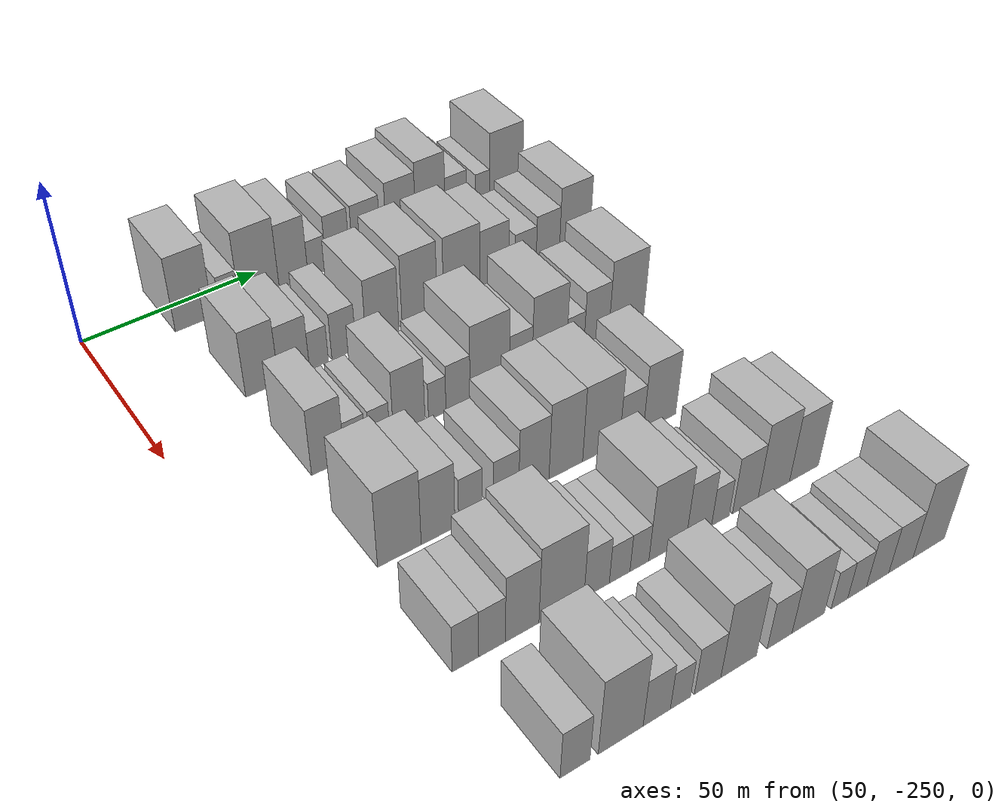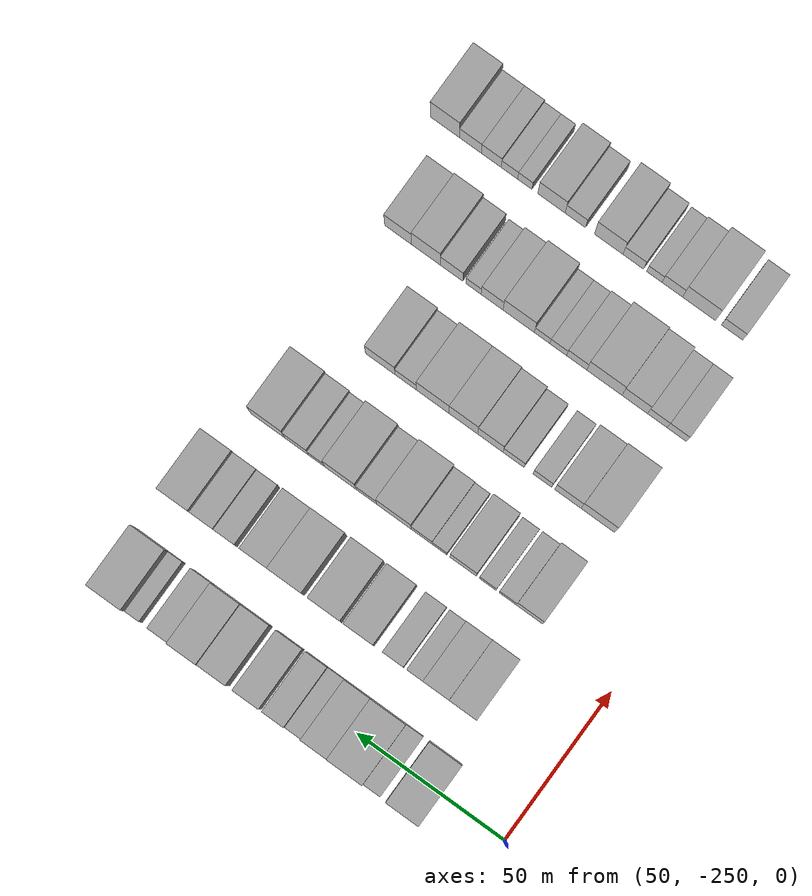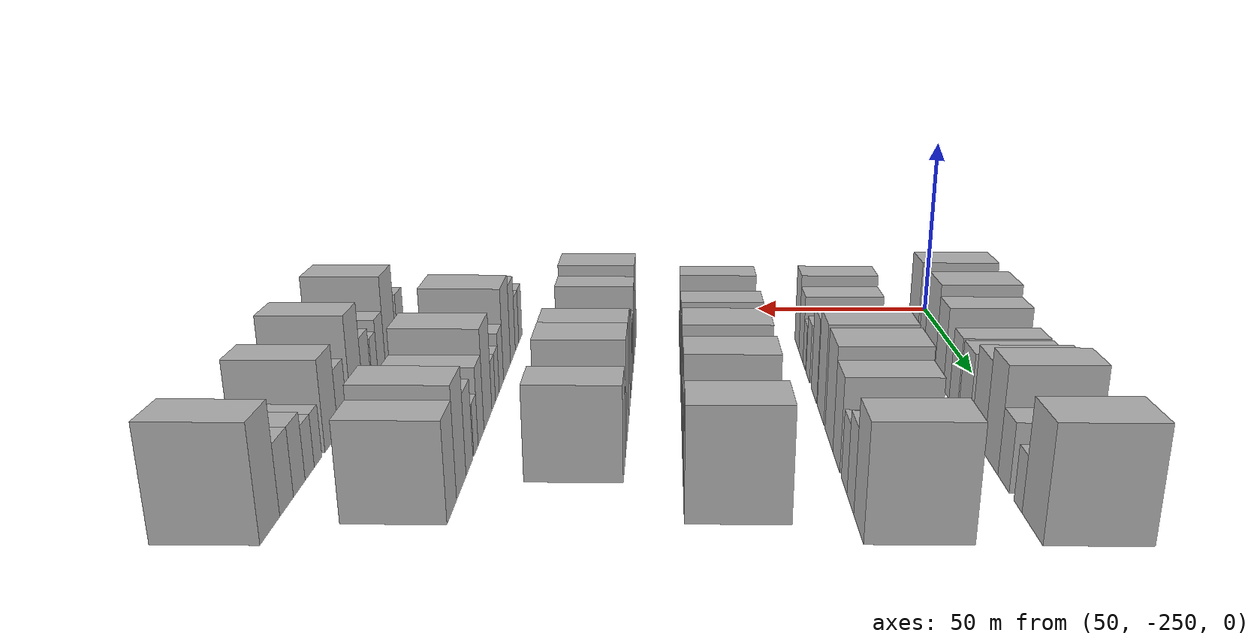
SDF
<sdf version="1.6">
 <world name="default">
  <model name="building_35">
   <static>1</static>
   <pose>50.0000 -222.9029 0 0.000000 0.000000 0.000000</pose>
   <link name="link">
    <pose>0 0 12.00 0 0 0</pose>
    <collision name="collision"><geometry><box><size>20.0000 10.8468 24.0000</size></box></geometry></collision>
    <visual name="visual">
     <cast_shadows>0</cast_shadows>
     <geometry><box><size>20.0000 10.8468 24.0000</size></box></geometry>
     <material>
      <script>
       <uri>model://HANNAS_wall/materials/scripts</uri>
       <uri>model://HANNAS_wall/materials/textures</uri>
       <name>vrc/HANNAS_wall</name>
      </script>
     </material>
    </visual>
   </link>
  </model>
  <model name="building_36">
   <static>1</static>
   <pose>50.0000 -212.6244 0 0.000000 0.000000 0.000000</pose>
   <link name="link">
    <pose>0 0 6.00 0 0 0</pose>
    <collision name="collision"><geometry><box><size>20.0000 5.7102 12.0000</size></box></geometry></collision>
    <visual name="visual">
     <cast_shadows>0</cast_shadows>
     <geometry><box><size>20.0000 5.7102 12.0000</size></box></geometry>
     <material>
      <script>
       <uri>model://HANNAS_wall/materials/scripts</uri>
       <uri>model://HANNAS_wall/materials/textures</uri>
       <name>vrc/HANNAS_wall</name>
      </script>
     </material>
    </visual>
   </link>
  </model>
  <model name="building_37">
   <static>1</static>
   <pose>50.0000 -203.8421 0 0.000000 0.000000 0.000000</pose>
   <link name="link">
    <pose>0 0 12.00 0 0 0</pose>
    <collision name="collision"><geometry><box><size>20.0000 11.8542 24.0000</size></box></geometry></collision>
    <visual name="visual">
     <cast_shadows>0</cast_shadows>
     <geometry><box><size>20.0000 11.8542 24.0000</size></box></geometry>
     <material>
      <script>
       <uri>model://HANNAS_wall/materials/scripts</uri>
       <uri>model://HANNAS_wall/materials/textures</uri>
       <name>vrc/HANNAS_wall</name>
      </script>
     </material>
    </visual>
   </link>
  </model>
  <model name="building_38">
   <static>1</static>
   <pose>50.0000 -193.5161 0 0.000000 0.000000 0.000000</pose>
   <link name="link">
    <pose>0 0 10.50 0 0 0</pose>
    <collision name="collision"><geometry><box><size>20.0000 8.7978 21.0000</size></box></geometry></collision>
    <visual name="visual">
     <cast_shadows>0</cast_shadows>
     <geometry><box><size>20.0000 8.7978 21.0000</size></box></geometry>
     <material>
      <script>
       <uri>model://HANNAS_wall/materials/scripts</uri>
       <uri>model://HANNAS_wall/materials/textures</uri>
       <name>vrc/HANNAS_wall</name>
      </script>
     </material>
    </visual>
   </link>
  </model>
  <model name="building_39">
   <static>1</static>
   <pose>50.0000 -186.3156 0 0.000000 0.000000 0.000000</pose>
   <link name="link">
    <pose>0 0 6.00 0 0 0</pose>
    <collision name="collision"><geometry><box><size>20.0000 5.6032 12.0000</size></box></geometry></collision>
    <visual name="visual">
     <cast_shadows>0</cast_shadows>
     <geometry><box><size>20.0000 5.6032 12.0000</size></box></geometry>
     <material>
      <script>
       <uri>model://HANNAS_wall/materials/scripts</uri>
       <uri>model://HANNAS_wall/materials/textures</uri>
       <name>vrc/HANNAS_wall</name>
      </script>
     </material>
    </visual>
   </link>
  </model>
  <model name="building_40">
   <static>1</static>
   <pose>50.0000 -179.8365 0 0.000000 0.000000 0.000000</pose>
   <link name="link">
    <pose>0 0 9.00 0 0 0</pose>
    <collision name="collision"><geometry><box><size>20.0000 7.3552 18.0000</size></box></geometry></collision>
    <visual name="visual">
     <cast_shadows>0</cast_shadows>
     <geometry><box><size>20.0000 7.3552 18.0000</size></box></geometry>
     <material>
      <script>
       <uri>model://HANNAS_wall/materials/scripts</uri>
       <uri>model://HANNAS_wall/materials/textures</uri>
       <name>vrc/HANNAS_wall</name>
      </script>
     </material>
    </visual>
   </link>
  </model>
  <model name="building_41">
   <static>1</static>
   <pose>50.0000 -170.7473 0 0.000000 0.000000 0.000000</pose>
   <link name="link">
    <pose>0 0 9.00 0 0 0</pose>
    <collision name="collision"><geometry><box><size>20.0000 8.8231 18.0000</size></box></geometry></collision>
    <visual name="visual">
     <cast_shadows>0</cast_shadows>
     <geometry><box><size>20.0000 8.8231 18.0000</size></box></geometry>
     <material>
      <script>
       <uri>model://HANNAS_wall/materials/scripts</uri>
       <uri>model://HANNAS_wall/materials/textures</uri>
       <name>vrc/HANNAS_wall</name>
      </script>
     </material>
    </visual>
   </link>
  </model>
  <model name="building_42">
   <static>1</static>
   <pose>50.0000 -159.5592 0 0.000000 0.000000 0.000000</pose>
   <link name="link">
    <pose>0 0 10.50 0 0 0</pose>
    <collision name="collision"><geometry><box><size>20.0000 9.5531 21.0000</size></box></geometry></collision>
    <visual name="visual">
     <cast_shadows>0</cast_shadows>
     <geometry><box><size>20.0000 9.5531 21.0000</size></box></geometry>
     <material>
      <script>
       <uri>model://HANNAS_wall/materials/scripts</uri>
       <uri>model://HANNAS_wall/materials/textures</uri>
       <name>vrc/HANNAS_wall</name>
      </script>
     </material>
    </visual>
   </link>
  </model>
  <model name="building_43">
   <static>1</static>
   <pose>50.0000 -149.8854 0 0.000000 0.000000 0.000000</pose>
   <link name="link">
    <pose>0 0 12.00 0 0 0</pose>
    <collision name="collision"><geometry><box><size>20.0000 9.7946 24.0000</size></box></geometry></collision>
    <visual name="visual">
     <cast_shadows>0</cast_shadows>
     <geometry><box><size>20.0000 9.7946 24.0000</size></box></geometry>
     <material>
      <script>
       <uri>model://HANNAS_wall/materials/scripts</uri>
       <uri>model://HANNAS_wall/materials/textures</uri>
       <name>vrc/HANNAS_wall</name>
      </script>
     </material>
    </visual>
   </link>
  </model>
  <model name="building_44">
   <static>1</static>
   <pose>50.0000 -141.3298 0 0.000000 0.000000 0.000000</pose>
   <link name="link">
    <pose>0 0 7.50 0 0 0</pose>
    <collision name="collision"><geometry><box><size>20.0000 7.3166 15.0000</size></box></geometry></collision>
    <visual name="visual">
     <cast_shadows>0</cast_shadows>
     <geometry><box><size>20.0000 7.3166 15.0000</size></box></geometry>
     <material>
      <script>
       <uri>model://HANNAS_wall/materials/scripts</uri>
       <uri>model://HANNAS_wall/materials/textures</uri>
       <name>vrc/HANNAS_wall</name>
      </script>
     </material>
    </visual>
   </link>
  </model>
  <model name="building_45">
   <static>1</static>
   <pose>50.0000 -132.2656 0 0.000000 0.000000 0.000000</pose>
   <link name="link">
    <pose>0 0 6.00 0 0 0</pose>
    <collision name="collision"><geometry><box><size>20.0000 4.8118 12.0000</size></box></geometry></collision>
    <visual name="visual">
     <cast_shadows>0</cast_shadows>
     <geometry><box><size>20.0000 4.8118 12.0000</size></box></geometry>
     <material>
      <script>
       <uri>model://HANNAS_wall/materials/scripts</uri>
       <uri>model://HANNAS_wall/materials/textures</uri>
       <name>vrc/HANNAS_wall</name>
      </script>
     </material>
    </visual>
   </link>
  </model>
  <model name="building_46">
   <static>1</static>
   <pose>50.0000 -124.0828 0 0.000000 0.000000 0.000000</pose>
   <link name="link">
    <pose>0 0 12.00 0 0 0</pose>
    <collision name="collision"><geometry><box><size>20.0000 11.5539 24.0000</size></box></geometry></collision>
    <visual name="visual">
     <cast_shadows>0</cast_shadows>
     <geometry><box><size>20.0000 11.5539 24.0000</size></box></geometry>
     <material>
      <script>
       <uri>model://HANNAS_wall/materials/scripts</uri>
       <uri>model://HANNAS_wall/materials/textures</uri>
       <name>vrc/HANNAS_wall</name>
      </script>
     </material>
    </visual>
   </link>
  </model>
  <model name="building_154">
   <static>1</static>
   <pose>82.0000 -219.8962 0 0.000000 0.000000 0.000000</pose>
   <link name="link">
    <pose>0 0 10.50 0 0 0</pose>
    <collision name="collision"><geometry><box><size>20.0000 9.1599 21.0000</size></box></geometry></collision>
    <visual name="visual">
     <cast_shadows>0</cast_shadows>
     <geometry><box><size>20.0000 9.1599 21.0000</size></box></geometry>
     <material>
      <script>
       <uri>model://HANNAS_wall/materials/scripts</uri>
       <uri>model://HANNAS_wall/materials/textures</uri>
       <name>vrc/HANNAS_wall</name>
      </script>
     </material>
    </visual>
   </link>
  </model>
  <model name="building_155">
   <static>1</static>
   <pose>82.0000 -210.9433 0 0.000000 0.000000 0.000000</pose>
   <link name="link">
    <pose>0 0 9.00 0 0 0</pose>
    <collision name="collision"><geometry><box><size>20.0000 8.7459 18.0000</size></box></geometry></collision>
    <visual name="visual">
     <cast_shadows>0</cast_shadows>
     <geometry><box><size>20.0000 8.7459 18.0000</size></box></geometry>
     <material>
      <script>
       <uri>model://HANNAS_wall/materials/scripts</uri>
       <uri>model://HANNAS_wall/materials/textures</uri>
       <name>vrc/HANNAS_wall</name>
      </script>
     </material>
    </visual>
   </link>
  </model>
  <model name="building_156">
   <static>1</static>
   <pose>82.0000 -203.8477 0 0.000000 0.000000 0.000000</pose>
   <link name="link">
    <pose>0 0 6.00 0 0 0</pose>
    <collision name="collision"><geometry><box><size>20.0000 5.4451 12.0000</size></box></geometry></collision>
    <visual name="visual">
     <cast_shadows>0</cast_shadows>
     <geometry><box><size>20.0000 5.4451 12.0000</size></box></geometry>
     <material>
      <script>
       <uri>model://HANNAS_wall/materials/scripts</uri>
       <uri>model://HANNAS_wall/materials/textures</uri>
       <name>vrc/HANNAS_wall</name>
      </script>
     </material>
    </visual>
   </link>
  </model>
  <model name="building_157">
   <static>1</static>
   <pose>82.0000 -196.5955 0 0.000000 0.000000 0.000000</pose>
   <link name="link">
    <pose>0 0 7.50 0 0 0</pose>
    <collision name="collision"><geometry><box><size>20.0000 7.0593 15.0000</size></box></geometry></collision>
    <visual name="visual">
     <cast_shadows>0</cast_shadows>
     <geometry><box><size>20.0000 7.0593 15.0000</size></box></geometry>
     <material>
      <script>
       <uri>model://HANNAS_wall/materials/scripts</uri>
       <uri>model://HANNAS_wall/materials/textures</uri>
       <name>vrc/HANNAS_wall</name>
      </script>
     </material>
    </visual>
   </link>
  </model>
  <model name="building_158">
   <static>1</static>
   <pose>82.0000 -185.1236 0 0.000000 0.000000 0.000000</pose>
   <link name="link">
    <pose>0 0 10.50 0 0 0</pose>
    <collision name="collision"><geometry><box><size>20.0000 9.8846 21.0000</size></box></geometry></collision>
    <visual name="visual">
     <cast_shadows>0</cast_shadows>
     <geometry><box><size>20.0000 9.8846 21.0000</size></box></geometry>
     <material>
      <script>
       <uri>model://HANNAS_wall/materials/scripts</uri>
       <uri>model://HANNAS_wall/materials/textures</uri>
       <name>vrc/HANNAS_wall</name>
      </script>
     </material>
    </visual>
   </link>
  </model>
  <model name="building_159">
   <static>1</static>
   <pose>82.0000 -173.7781 0 0.000000 0.000000 0.000000</pose>
   <link name="link">
    <pose>0 0 12.00 0 0 0</pose>
    <collision name="collision"><geometry><box><size>20.0000 10.8063 24.0000</size></box></geometry></collision>
    <visual name="visual">
     <cast_shadows>0</cast_shadows>
     <geometry><box><size>20.0000 10.8063 24.0000</size></box></geometry>
     <material>
      <script>
       <uri>model://HANNAS_wall/materials/scripts</uri>
       <uri>model://HANNAS_wall/materials/textures</uri>
       <name>vrc/HANNAS_wall</name>
      </script>
     </material>
    </visual>
   </link>
  </model>
  <model name="building_160">
   <static>1</static>
   <pose>82.0000 -160.6471 0 0.000000 0.000000 0.000000</pose>
   <link name="link">
    <pose>0 0 12.00 0 0 0</pose>
    <collision name="collision"><geometry><box><size>20.0000 11.4556 24.0000</size></box></geometry></collision>
    <visual name="visual">
     <cast_shadows>0</cast_shadows>
     <geometry><box><size>20.0000 11.4556 24.0000</size></box></geometry>
     <material>
      <script>
       <uri>model://HANNAS_wall/materials/scripts</uri>
       <uri>model://HANNAS_wall/materials/textures</uri>
       <name>vrc/HANNAS_wall</name>
      </script>
     </material>
    </visual>
   </link>
  </model>
  <model name="building_161">
   <static>1</static>
   <pose>82.0000 -150.2389 0 0.000000 0.000000 0.000000</pose>
   <link name="link">
    <pose>0 0 10.50 0 0 0</pose>
    <collision name="collision"><geometry><box><size>20.0000 9.3609 21.0000</size></box></geometry></collision>
    <visual name="visual">
     <cast_shadows>0</cast_shadows>
     <geometry><box><size>20.0000 9.3609 21.0000</size></box></geometry>
     <material>
      <script>
       <uri>model://HANNAS_wall/materials/scripts</uri>
       <uri>model://HANNAS_wall/materials/textures</uri>
       <name>vrc/HANNAS_wall</name>
      </script>
     </material>
    </visual>
   </link>
  </model>
  <model name="building_162">
   <static>1</static>
   <pose>82.0000 -140.0357 0 0.000000 0.000000 0.000000</pose>
   <link name="link">
    <pose>0 0 7.50 0 0 0</pose>
    <collision name="collision"><geometry><box><size>20.0000 7.0455 15.0000</size></box></geometry></collision>
    <visual name="visual">
     <cast_shadows>0</cast_shadows>
     <geometry><box><size>20.0000 7.0455 15.0000</size></box></geometry>
     <material>
      <script>
       <uri>model://HANNAS_wall/materials/scripts</uri>
       <uri>model://HANNAS_wall/materials/textures</uri>
       <name>vrc/HANNAS_wall</name>
      </script>
     </material>
    </visual>
   </link>
  </model>
  <model name="building_163">
   <static>1</static>
   <pose>82.0000 -132.6115 0 0.000000 0.000000 0.000000</pose>
   <link name="link">
    <pose>0 0 9.00 0 0 0</pose>
    <collision name="collision"><geometry><box><size>20.0000 7.8028 18.0000</size></box></geometry></collision>
    <visual name="visual">
     <cast_shadows>0</cast_shadows>
     <geometry><box><size>20.0000 7.8028 18.0000</size></box></geometry>
     <material>
      <script>
       <uri>model://HANNAS_wall/materials/scripts</uri>
       <uri>model://HANNAS_wall/materials/textures</uri>
       <name>vrc/HANNAS_wall</name>
      </script>
     </material>
    </visual>
   </link>
  </model>
  <model name="building_164">
   <static>1</static>
   <pose>82.0000 -123.5121 0 0.000000 0.000000 0.000000</pose>
   <link name="link">
    <pose>0 0 12.00 0 0 0</pose>
    <collision name="collision"><geometry><box><size>20.0000 10.3960 24.0000</size></box></geometry></collision>
    <visual name="visual">
     <cast_shadows>0</cast_shadows>
     <geometry><box><size>20.0000 10.3960 24.0000</size></box></geometry>
     <material>
      <script>
       <uri>model://HANNAS_wall/materials/scripts</uri>
       <uri>model://HANNAS_wall/materials/textures</uri>
       <name>vrc/HANNAS_wall</name>
      </script>
     </material>
    </visual>
   </link>
  </model>
  <model name="building_270">
   <static>1</static>
   <pose>114.0000 -219.4865 0 0.000000 0.000000 0.000000</pose>
   <link name="link">
    <pose>0 0 10.50 0 0 0</pose>
    <collision name="collision"><geometry><box><size>20.0000 8.7987 21.0000</size></box></geometry></collision>
    <visual name="visual">
     <cast_shadows>0</cast_shadows>
     <geometry><box><size>20.0000 8.7987 21.0000</size></box></geometry>
     <material>
      <script>
       <uri>model://HANNAS_wall/materials/scripts</uri>
       <uri>model://HANNAS_wall/materials/textures</uri>
       <name>vrc/HANNAS_wall</name>
      </script>
     </material>
    </visual>
   </link>
  </model>
  <model name="building_271">
   <static>1</static>
   <pose>114.0000 -212.1519 0 0.000000 0.000000 0.000000</pose>
   <link name="link">
    <pose>0 0 6.00 0 0 0</pose>
    <collision name="collision"><geometry><box><size>20.0000 5.8705 12.0000</size></box></geometry></collision>
    <visual name="visual">
     <cast_shadows>0</cast_shadows>
     <geometry><box><size>20.0000 5.8705 12.0000</size></box></geometry>
     <material>
      <script>
       <uri>model://HANNAS_wall/materials/scripts</uri>
       <uri>model://HANNAS_wall/materials/textures</uri>
       <name>vrc/HANNAS_wall</name>
      </script>
     </material>
    </visual>
   </link>
  </model>
  <model name="building_272">
   <static>1</static>
   <pose>114.0000 -205.3778 0 0.000000 0.000000 0.000000</pose>
   <link name="link">
    <pose>0 0 6.00 0 0 0</pose>
    <collision name="collision"><geometry><box><size>20.0000 5.6777 12.0000</size></box></geometry></collision>
    <visual name="visual">
     <cast_shadows>0</cast_shadows>
     <geometry><box><size>20.0000 5.6777 12.0000</size></box></geometry>
     <material>
      <script>
       <uri>model://HANNAS_wall/materials/scripts</uri>
       <uri>model://HANNAS_wall/materials/textures</uri>
       <name>vrc/HANNAS_wall</name>
      </script>
     </material>
    </visual>
   </link>
  </model>
  <model name="building_273">
   <static>1</static>
   <pose>114.0000 -197.0677 0 0.000000 0.000000 0.000000</pose>
   <link name="link">
    <pose>0 0 10.50 0 0 0</pose>
    <collision name="collision"><geometry><box><size>20.0000 8.9426 21.0000</size></box></geometry></collision>
    <visual name="visual">
     <cast_shadows>0</cast_shadows>
     <geometry><box><size>20.0000 8.9426 21.0000</size></box></geometry>
     <material>
      <script>
       <uri>model://HANNAS_wall/materials/scripts</uri>
       <uri>model://HANNAS_wall/materials/textures</uri>
       <name>vrc/HANNAS_wall</name>
      </script>
     </material>
    </visual>
   </link>
  </model>
  <model name="building_274">
   <static>1</static>
   <pose>114.0000 -189.0755 0 0.000000 0.000000 0.000000</pose>
   <link name="link">
    <pose>0 0 6.00 0 0 0</pose>
    <collision name="collision"><geometry><box><size>20.0000 5.0418 12.0000</size></box></geometry></collision>
    <visual name="visual">
     <cast_shadows>0</cast_shadows>
     <geometry><box><size>20.0000 5.0418 12.0000</size></box></geometry>
     <material>
      <script>
       <uri>model://HANNAS_wall/materials/scripts</uri>
       <uri>model://HANNAS_wall/materials/textures</uri>
       <name>vrc/HANNAS_wall</name>
      </script>
     </material>
    </visual>
   </link>
  </model>
  <model name="building_275">
   <static>1</static>
   <pose>114.0000 -183.0359 0 0.000000 0.000000 0.000000</pose>
   <link name="link">
    <pose>0 0 7.50 0 0 0</pose>
    <collision name="collision"><geometry><box><size>20.0000 7.0374 15.0000</size></box></geometry></collision>
    <visual name="visual">
     <cast_shadows>0</cast_shadows>
     <geometry><box><size>20.0000 7.0374 15.0000</size></box></geometry>
     <material>
      <script>
       <uri>model://HANNAS_wall/materials/scripts</uri>
       <uri>model://HANNAS_wall/materials/textures</uri>
       <name>vrc/HANNAS_wall</name>
      </script>
     </material>
    </visual>
   </link>
  </model>
  <model name="building_276">
   <static>1</static>
   <pose>114.0000 -173.6617 0 0.000000 0.000000 0.000000</pose>
   <link name="link">
    <pose>0 0 12.00 0 0 0</pose>
    <collision name="collision"><geometry><box><size>20.0000 11.7110 24.0000</size></box></geometry></collision>
    <visual name="visual">
     <cast_shadows>0</cast_shadows>
     <geometry><box><size>20.0000 11.7110 24.0000</size></box></geometry>
     <material>
      <script>
       <uri>model://HANNAS_wall/materials/scripts</uri>
       <uri>model://HANNAS_wall/materials/textures</uri>
       <name>vrc/HANNAS_wall</name>
      </script>
     </material>
    </visual>
   </link>
  </model>
  <model name="building_277">
   <static>1</static>
   <pose>114.0000 -164.3070 0 0.000000 0.000000 0.000000</pose>
   <link name="link">
    <pose>0 0 7.50 0 0 0</pose>
    <collision name="collision"><geometry><box><size>20.0000 6.9986 15.0000</size></box></geometry></collision>
    <visual name="visual">
     <cast_shadows>0</cast_shadows>
     <geometry><box><size>20.0000 6.9986 15.0000</size></box></geometry>
     <material>
      <script>
       <uri>model://HANNAS_wall/materials/scripts</uri>
       <uri>model://HANNAS_wall/materials/textures</uri>
       <name>vrc/HANNAS_wall</name>
      </script>
     </material>
    </visual>
   </link>
  </model>
  <model name="building_278">
   <static>1</static>
   <pose>114.0000 -155.4305 0 0.000000 0.000000 0.000000</pose>
   <link name="link">
    <pose>0 0 12.00 0 0 0</pose>
    <collision name="collision"><geometry><box><size>20.0000 10.7543 24.0000</size></box></geometry></collision>
    <visual name="visual">
     <cast_shadows>0</cast_shadows>
     <geometry><box><size>20.0000 10.7543 24.0000</size></box></geometry>
     <material>
      <script>
       <uri>model://HANNAS_wall/materials/scripts</uri>
       <uri>model://HANNAS_wall/materials/textures</uri>
       <name>vrc/HANNAS_wall</name>
      </script>
     </material>
    </visual>
   </link>
  </model>
  <model name="building_279">
   <static>1</static>
   <pose>114.0000 -147.2645 0 0.000000 0.000000 0.000000</pose>
   <link name="link">
    <pose>0 0 6.00 0 0 0</pose>
    <collision name="collision"><geometry><box><size>20.0000 5.5777 12.0000</size></box></geometry></collision>
    <visual name="visual">
     <cast_shadows>0</cast_shadows>
     <geometry><box><size>20.0000 5.5777 12.0000</size></box></geometry>
     <material>
      <script>
       <uri>model://HANNAS_wall/materials/scripts</uri>
       <uri>model://HANNAS_wall/materials/textures</uri>
       <name>vrc/HANNAS_wall</name>
      </script>
     </material>
    </visual>
   </link>
  </model>
  <model name="building_280">
   <static>1</static>
   <pose>114.0000 -140.4612 0 0.000000 0.000000 0.000000</pose>
   <link name="link">
    <pose>0 0 9.00 0 0 0</pose>
    <collision name="collision"><geometry><box><size>20.0000 8.0288 18.0000</size></box></geometry></collision>
    <visual name="visual">
     <cast_shadows>0</cast_shadows>
     <geometry><box><size>20.0000 8.0288 18.0000</size></box></geometry>
     <material>
      <script>
       <uri>model://HANNAS_wall/materials/scripts</uri>
       <uri>model://HANNAS_wall/materials/textures</uri>
       <name>vrc/HANNAS_wall</name>
      </script>
     </material>
    </visual>
   </link>
  </model>
  <model name="building_281">
   <static>1</static>
   <pose>114.0000 -130.7114 0 0.000000 0.000000 0.000000</pose>
   <link name="link">
    <pose>0 0 12.00 0 0 0</pose>
    <collision name="collision"><geometry><box><size>20.0000 11.4709 24.0000</size></box></geometry></collision>
    <visual name="visual">
     <cast_shadows>0</cast_shadows>
     <geometry><box><size>20.0000 11.4709 24.0000</size></box></geometry>
     <material>
      <script>
       <uri>model://HANNAS_wall/materials/scripts</uri>
       <uri>model://HANNAS_wall/materials/textures</uri>
       <name>vrc/HANNAS_wall</name>
      </script>
     </material>
    </visual>
   </link>
  </model>
  <model name="building_392">
   <static>1</static>
   <pose>146.0000 -219.6752 0 0.000000 0.000000 0.000000</pose>
   <link name="link">
    <pose>0 0 12.00 0 0 0</pose>
    <collision name="collision"><geometry><box><size>20.0000 11.3079 24.0000</size></box></geometry></collision>
    <visual name="visual">
     <cast_shadows>0</cast_shadows>
     <geometry><box><size>20.0000 11.3079 24.0000</size></box></geometry>
     <material>
      <script>
       <uri>model://HANNAS_wall/materials/scripts</uri>
       <uri>model://HANNAS_wall/materials/textures</uri>
       <name>vrc/HANNAS_wall</name>
      </script>
     </material>
    </visual>
   </link>
  </model>
  <model name="building_393">
   <static>1</static>
   <pose>146.0000 -209.5412 0 0.000000 0.000000 0.000000</pose>
   <link name="link">
    <pose>0 0 10.50 0 0 0</pose>
    <collision name="collision"><geometry><box><size>20.0000 8.9602 21.0000</size></box></geometry></collision>
    <visual name="visual">
     <cast_shadows>0</cast_shadows>
     <geometry><box><size>20.0000 8.9602 21.0000</size></box></geometry>
     <material>
      <script>
       <uri>model://HANNAS_wall/materials/scripts</uri>
       <uri>model://HANNAS_wall/materials/textures</uri>
       <name>vrc/HANNAS_wall</name>
      </script>
     </material>
    </visual>
   </link>
  </model>
  <model name="building_394">
   <static>1</static>
   <pose>146.0000 -200.8773 0 0.000000 0.000000 0.000000</pose>
   <link name="link">
    <pose>0 0 7.50 0 0 0</pose>
    <collision name="collision"><geometry><box><size>20.0000 6.3676 15.0000</size></box></geometry></collision>
    <visual name="visual">
     <cast_shadows>0</cast_shadows>
     <geometry><box><size>20.0000 6.3676 15.0000</size></box></geometry>
     <material>
      <script>
       <uri>model://HANNAS_wall/materials/scripts</uri>
       <uri>model://HANNAS_wall/materials/textures</uri>
       <name>vrc/HANNAS_wall</name>
      </script>
     </material>
    </visual>
   </link>
  </model>
  <model name="building_395">
   <static>1</static>
   <pose>146.0000 -191.1217 0 0.000000 0.000000 0.000000</pose>
   <link name="link">
    <pose>0 0 7.50 0 0 0</pose>
    <collision name="collision"><geometry><box><size>20.0000 7.1435 15.0000</size></box></geometry></collision>
    <visual name="visual">
     <cast_shadows>0</cast_shadows>
     <geometry><box><size>20.0000 7.1435 15.0000</size></box></geometry>
     <material>
      <script>
       <uri>model://HANNAS_wall/materials/scripts</uri>
       <uri>model://HANNAS_wall/materials/textures</uri>
       <name>vrc/HANNAS_wall</name>
      </script>
     </material>
    </visual>
   </link>
  </model>
  <model name="building_396">
   <static>1</static>
   <pose>146.0000 -183.2373 0 0.000000 0.000000 0.000000</pose>
   <link name="link">
    <pose>0 0 10.50 0 0 0</pose>
    <collision name="collision"><geometry><box><size>20.0000 8.6253 21.0000</size></box></geometry></collision>
    <visual name="visual">
     <cast_shadows>0</cast_shadows>
     <geometry><box><size>20.0000 8.6253 21.0000</size></box></geometry>
     <material>
      <script>
       <uri>model://HANNAS_wall/materials/scripts</uri>
       <uri>model://HANNAS_wall/materials/textures</uri>
       <name>vrc/HANNAS_wall</name>
      </script>
     </material>
    </visual>
   </link>
  </model>
  <model name="building_397">
   <static>1</static>
   <pose>146.0000 -174.0314 0 0.000000 0.000000 0.000000</pose>
   <link name="link">
    <pose>0 0 12.00 0 0 0</pose>
    <collision name="collision"><geometry><box><size>20.0000 9.7865 24.0000</size></box></geometry></collision>
    <visual name="visual">
     <cast_shadows>0</cast_shadows>
     <geometry><box><size>20.0000 9.7865 24.0000</size></box></geometry>
     <material>
      <script>
       <uri>model://HANNAS_wall/materials/scripts</uri>
       <uri>model://HANNAS_wall/materials/textures</uri>
       <name>vrc/HANNAS_wall</name>
      </script>
     </material>
    </visual>
   </link>
  </model>
  <model name="building_398">
   <static>1</static>
   <pose>146.0000 -163.6270 0 0.000000 0.000000 0.000000</pose>
   <link name="link">
    <pose>0 0 12.00 0 0 0</pose>
    <collision name="collision"><geometry><box><size>20.0000 11.0223 24.0000</size></box></geometry></collision>
    <visual name="visual">
     <cast_shadows>0</cast_shadows>
     <geometry><box><size>20.0000 11.0223 24.0000</size></box></geometry>
     <material>
      <script>
       <uri>model://HANNAS_wall/materials/scripts</uri>
       <uri>model://HANNAS_wall/materials/textures</uri>
       <name>vrc/HANNAS_wall</name>
      </script>
     </material>
    </visual>
   </link>
  </model>
  <model name="building_399">
   <static>1</static>
   <pose>146.0000 -154.5005 0 0.000000 0.000000 0.000000</pose>
   <link name="link">
    <pose>0 0 7.50 0 0 0</pose>
    <collision name="collision"><geometry><box><size>20.0000 7.2307 15.0000</size></box></geometry></collision>
    <visual name="visual">
     <cast_shadows>0</cast_shadows>
     <geometry><box><size>20.0000 7.2307 15.0000</size></box></geometry>
     <material>
      <script>
       <uri>model://HANNAS_wall/materials/scripts</uri>
       <uri>model://HANNAS_wall/materials/textures</uri>
       <name>vrc/HANNAS_wall</name>
      </script>
     </material>
    </visual>
   </link>
  </model>
  <model name="building_400">
   <static>1</static>
   <pose>146.0000 -145.8527 0 0.000000 0.000000 0.000000</pose>
   <link name="link">
    <pose>0 0 10.50 0 0 0</pose>
    <collision name="collision"><geometry><box><size>20.0000 10.0650 21.0000</size></box></geometry></collision>
    <visual name="visual">
     <cast_shadows>0</cast_shadows>
     <geometry><box><size>20.0000 10.0650 21.0000</size></box></geometry>
     <material>
      <script>
       <uri>model://HANNAS_wall/materials/scripts</uri>
       <uri>model://HANNAS_wall/materials/textures</uri>
       <name>vrc/HANNAS_wall</name>
      </script>
     </material>
    </visual>
   </link>
  </model>
  <model name="building_504">
   <static>1</static>
   <pose>178.0000 -223.5800 0 0.000000 0.000000 0.000000</pose>
   <link name="link">
    <pose>0 0 7.50 0 0 0</pose>
    <collision name="collision"><geometry><box><size>20.0000 6.5846 15.0000</size></box></geometry></collision>
    <visual name="visual">
     <cast_shadows>0</cast_shadows>
     <geometry><box><size>20.0000 6.5846 15.0000</size></box></geometry>
     <material>
      <script>
       <uri>model://HANNAS_wall/materials/scripts</uri>
       <uri>model://HANNAS_wall/materials/textures</uri>
       <name>vrc/HANNAS_wall</name>
      </script>
     </material>
    </visual>
   </link>
  </model>
  <model name="building_505">
   <static>1</static>
   <pose>178.0000 -216.9627 0 0.000000 0.000000 0.000000</pose>
   <link name="link">
    <pose>0 0 7.50 0 0 0</pose>
    <collision name="collision"><geometry><box><size>20.0000 6.6498 15.0000</size></box></geometry></collision>
    <visual name="visual">
     <cast_shadows>0</cast_shadows>
     <geometry><box><size>20.0000 6.6498 15.0000</size></box></geometry>
     <material>
      <script>
       <uri>model://HANNAS_wall/materials/scripts</uri>
       <uri>model://HANNAS_wall/materials/textures</uri>
       <name>vrc/HANNAS_wall</name>
      </script>
     </material>
    </visual>
   </link>
  </model>
  <model name="building_506">
   <static>1</static>
   <pose>178.0000 -209.2960 0 0.000000 0.000000 0.000000</pose>
   <link name="link">
    <pose>0 0 10.50 0 0 0</pose>
    <collision name="collision"><geometry><box><size>20.0000 8.6837 21.0000</size></box></geometry></collision>
    <visual name="visual">
     <cast_shadows>0</cast_shadows>
     <geometry><box><size>20.0000 8.6837 21.0000</size></box></geometry>
     <material>
      <script>
       <uri>model://HANNAS_wall/materials/scripts</uri>
       <uri>model://HANNAS_wall/materials/textures</uri>
       <name>vrc/HANNAS_wall</name>
      </script>
     </material>
    </visual>
   </link>
  </model>
  <model name="building_507">
   <static>1</static>
   <pose>178.0000 -198.9991 0 0.000000 0.000000 0.000000</pose>
   <link name="link">
    <pose>0 0 12.00 0 0 0</pose>
    <collision name="collision"><geometry><box><size>20.0000 11.9101 24.0000</size></box></geometry></collision>
    <visual name="visual">
     <cast_shadows>0</cast_shadows>
     <geometry><box><size>20.0000 11.9101 24.0000</size></box></geometry>
     <material>
      <script>
       <uri>model://HANNAS_wall/materials/scripts</uri>
       <uri>model://HANNAS_wall/materials/textures</uri>
       <name>vrc/HANNAS_wall</name>
      </script>
     </material>
    </visual>
   </link>
  </model>
  <model name="building_508">
   <static>1</static>
   <pose>178.0000 -189.6087 0 0.000000 0.000000 0.000000</pose>
   <link name="link">
    <pose>0 0 7.50 0 0 0</pose>
    <collision name="collision"><geometry><box><size>20.0000 6.8707 15.0000</size></box></geometry></collision>
    <visual name="visual">
     <cast_shadows>0</cast_shadows>
     <geometry><box><size>20.0000 6.8707 15.0000</size></box></geometry>
     <material>
      <script>
       <uri>model://HANNAS_wall/materials/scripts</uri>
       <uri>model://HANNAS_wall/materials/textures</uri>
       <name>vrc/HANNAS_wall</name>
      </script>
     </material>
    </visual>
   </link>
  </model>
  <model name="building_509">
   <static>1</static>
   <pose>178.0000 -183.3230 0 0.000000 0.000000 0.000000</pose>
   <link name="link">
    <pose>0 0 6.00 0 0 0</pose>
    <collision name="collision"><geometry><box><size>20.0000 5.7007 12.0000</size></box></geometry></collision>
    <visual name="visual">
     <cast_shadows>0</cast_shadows>
     <geometry><box><size>20.0000 5.7007 12.0000</size></box></geometry>
     <material>
      <script>
       <uri>model://HANNAS_wall/materials/scripts</uri>
       <uri>model://HANNAS_wall/materials/textures</uri>
       <name>vrc/HANNAS_wall</name>
      </script>
     </material>
    </visual>
   </link>
  </model>
  <model name="building_510">
   <static>1</static>
   <pose>178.0000 -177.8360 0 0.000000 0.000000 0.000000</pose>
   <link name="link">
    <pose>0 0 6.00 0 0 0</pose>
    <collision name="collision"><geometry><box><size>20.0000 5.2732 12.0000</size></box></geometry></collision>
    <visual name="visual">
     <cast_shadows>0</cast_shadows>
     <geometry><box><size>20.0000 5.2732 12.0000</size></box></geometry>
     <material>
      <script>
       <uri>model://HANNAS_wall/materials/scripts</uri>
       <uri>model://HANNAS_wall/materials/textures</uri>
       <name>vrc/HANNAS_wall</name>
      </script>
     </material>
    </visual>
   </link>
  </model>
  <model name="building_511">
   <static>1</static>
   <pose>178.0000 -169.8621 0 0.000000 0.000000 0.000000</pose>
   <link name="link">
    <pose>0 0 12.00 0 0 0</pose>
    <collision name="collision"><geometry><box><size>20.0000 10.6745 24.0000</size></box></geometry></collision>
    <visual name="visual">
     <cast_shadows>0</cast_shadows>
     <geometry><box><size>20.0000 10.6745 24.0000</size></box></geometry>
     <material>
      <script>
       <uri>model://HANNAS_wall/materials/scripts</uri>
       <uri>model://HANNAS_wall/materials/textures</uri>
       <name>vrc/HANNAS_wall</name>
      </script>
     </material>
    </visual>
   </link>
  </model>
  <model name="building_512">
   <static>1</static>
   <pose>178.0000 -160.8026 0 0.000000 0.000000 0.000000</pose>
   <link name="link">
    <pose>0 0 9.00 0 0 0</pose>
    <collision name="collision"><geometry><box><size>20.0000 7.4446 18.0000</size></box></geometry></collision>
    <visual name="visual">
     <cast_shadows>0</cast_shadows>
     <geometry><box><size>20.0000 7.4446 18.0000</size></box></geometry>
     <material>
      <script>
       <uri>model://HANNAS_wall/materials/scripts</uri>
       <uri>model://HANNAS_wall/materials/textures</uri>
       <name>vrc/HANNAS_wall</name>
      </script>
     </material>
    </visual>
   </link>
  </model>
  <model name="building_513">
   <static>1</static>
   <pose>178.0000 -154.4697 0 0.000000 0.000000 0.000000</pose>
   <link name="link">
    <pose>0 0 6.00 0 0 0</pose>
    <collision name="collision"><geometry><box><size>20.0000 5.2211 12.0000</size></box></geometry></collision>
    <visual name="visual">
     <cast_shadows>0</cast_shadows>
     <geometry><box><size>20.0000 5.2211 12.0000</size></box></geometry>
     <material>
      <script>
       <uri>model://HANNAS_wall/materials/scripts</uri>
       <uri>model://HANNAS_wall/materials/textures</uri>
       <name>vrc/HANNAS_wall</name>
      </script>
     </material>
    </visual>
   </link>
  </model>
  <model name="building_514">
   <static>1</static>
   <pose>178.0000 -146.9906 0 0.000000 0.000000 0.000000</pose>
   <link name="link">
    <pose>0 0 9.00 0 0 0</pose>
    <collision name="collision"><geometry><box><size>20.0000 7.7371 18.0000</size></box></geometry></collision>
    <visual name="visual">
     <cast_shadows>0</cast_shadows>
     <geometry><box><size>20.0000 7.7371 18.0000</size></box></geometry>
     <material>
      <script>
       <uri>model://HANNAS_wall/materials/scripts</uri>
       <uri>model://HANNAS_wall/materials/textures</uri>
       <name>vrc/HANNAS_wall</name>
      </script>
     </material>
    </visual>
   </link>
  </model>
  <model name="building_515">
   <static>1</static>
   <pose>178.0000 -138.2297 0 0.000000 0.000000 0.000000</pose>
   <link name="link">
    <pose>0 0 12.00 0 0 0</pose>
    <collision name="collision"><geometry><box><size>20.0000 9.7848 24.0000</size></box></geometry></collision>
    <visual name="visual">
     <cast_shadows>0</cast_shadows>
     <geometry><box><size>20.0000 9.7848 24.0000</size></box></geometry>
     <material>
      <script>
       <uri>model://HANNAS_wall/materials/scripts</uri>
       <uri>model://HANNAS_wall/materials/textures</uri>
       <name>vrc/HANNAS_wall</name>
      </script>
     </material>
    </visual>
   </link>
  </model>
  <model name="building_516">
   <static>1</static>
   <pose>178.0000 -128.7566 0 0.000000 0.000000 0.000000</pose>
   <link name="link">
    <pose>0 0 10.50 0 0 0</pose>
    <collision name="collision"><geometry><box><size>20.0000 9.1614 21.0000</size></box></geometry></collision>
    <visual name="visual">
     <cast_shadows>0</cast_shadows>
     <geometry><box><size>20.0000 9.1614 21.0000</size></box></geometry>
     <material>
      <script>
       <uri>model://HANNAS_wall/materials/scripts</uri>
       <uri>model://HANNAS_wall/materials/textures</uri>
       <name>vrc/HANNAS_wall</name>
      </script>
     </material>
    </visual>
   </link>
  </model>
  <model name="building_625">
   <static>1</static>
   <pose>210.0000 -219.4937 0 0.000000 0.000000 0.000000</pose>
   <link name="link">
    <pose>0 0 7.50 0 0 0</pose>
    <collision name="collision"><geometry><box><size>20.0000 7.2346 15.0000</size></box></geometry></collision>
    <visual name="visual">
     <cast_shadows>0</cast_shadows>
     <geometry><box><size>20.0000 7.2346 15.0000</size></box></geometry>
     <material>
      <script>
       <uri>model://HANNAS_wall/materials/scripts</uri>
       <uri>model://HANNAS_wall/materials/textures</uri>
       <name>vrc/HANNAS_wall</name>
      </script>
     </material>
    </visual>
   </link>
  </model>
  <model name="building_626">
   <static>1</static>
   <pose>210.0000 -208.2759 0 0.000000 0.000000 0.000000</pose>
   <link name="link">
    <pose>0 0 12.00 0 0 0</pose>
    <collision name="collision"><geometry><box><size>20.0000 11.2010 24.0000</size></box></geometry></collision>
    <visual name="visual">
     <cast_shadows>0</cast_shadows>
     <geometry><box><size>20.0000 11.2010 24.0000</size></box></geometry>
     <material>
      <script>
       <uri>model://HANNAS_wall/materials/scripts</uri>
       <uri>model://HANNAS_wall/materials/textures</uri>
       <name>vrc/HANNAS_wall</name>
      </script>
     </material>
    </visual>
   </link>
  </model>
  <model name="building_627">
   <static>1</static>
   <pose>210.0000 -199.1871 0 0.000000 0.000000 0.000000</pose>
   <link name="link">
    <pose>0 0 7.50 0 0 0</pose>
    <collision name="collision"><geometry><box><size>20.0000 6.9767 15.0000</size></box></geometry></collision>
    <visual name="visual">
     <cast_shadows>0</cast_shadows>
     <geometry><box><size>20.0000 6.9767 15.0000</size></box></geometry>
     <material>
      <script>
       <uri>model://HANNAS_wall/materials/scripts</uri>
       <uri>model://HANNAS_wall/materials/textures</uri>
       <name>vrc/HANNAS_wall</name>
      </script>
     </material>
    </visual>
   </link>
  </model>
  <model name="building_628">
   <static>1</static>
   <pose>210.0000 -193.0576 0 0.000000 0.000000 0.000000</pose>
   <link name="link">
    <pose>0 0 6.00 0 0 0</pose>
    <collision name="collision"><geometry><box><size>20.0000 5.2823 12.0000</size></box></geometry></collision>
    <visual name="visual">
     <cast_shadows>0</cast_shadows>
     <geometry><box><size>20.0000 5.2823 12.0000</size></box></geometry>
     <material>
      <script>
       <uri>model://HANNAS_wall/materials/scripts</uri>
       <uri>model://HANNAS_wall/materials/textures</uri>
       <name>vrc/HANNAS_wall</name>
      </script>
     </material>
    </visual>
   </link>
  </model>
  <model name="building_629">
   <static>1</static>
   <pose>210.0000 -185.8939 0 0.000000 0.000000 0.000000</pose>
   <link name="link">
    <pose>0 0 7.50 0 0 0</pose>
    <collision name="collision"><geometry><box><size>20.0000 7.0451 15.0000</size></box></geometry></collision>
    <visual name="visual">
     <cast_shadows>0</cast_shadows>
     <geometry><box><size>20.0000 7.0451 15.0000</size></box></geometry>
     <material>
      <script>
       <uri>model://HANNAS_wall/materials/scripts</uri>
       <uri>model://HANNAS_wall/materials/textures</uri>
       <name>vrc/HANNAS_wall</name>
      </script>
     </material>
    </visual>
   </link>
  </model>
  <model name="building_630">
   <static>1</static>
   <pose>210.0000 -177.5123 0 0.000000 0.000000 0.000000</pose>
   <link name="link">
    <pose>0 0 12.00 0 0 0</pose>
    <collision name="collision"><geometry><box><size>20.0000 9.7181 24.0000</size></box></geometry></collision>
    <visual name="visual">
     <cast_shadows>0</cast_shadows>
     <geometry><box><size>20.0000 9.7181 24.0000</size></box></geometry>
     <material>
      <script>
       <uri>model://HANNAS_wall/materials/scripts</uri>
       <uri>model://HANNAS_wall/materials/textures</uri>
       <name>vrc/HANNAS_wall</name>
      </script>
     </material>
    </visual>
   </link>
  </model>
  <model name="building_631">
   <static>1</static>
   <pose>210.0000 -166.1688 0 0.000000 0.000000 0.000000</pose>
   <link name="link">
    <pose>0 0 7.50 0 0 0</pose>
    <collision name="collision"><geometry><box><size>20.0000 6.9690 15.0000</size></box></geometry></collision>
    <visual name="visual">
     <cast_shadows>0</cast_shadows>
     <geometry><box><size>20.0000 6.9690 15.0000</size></box></geometry>
     <material>
      <script>
       <uri>model://HANNAS_wall/materials/scripts</uri>
       <uri>model://HANNAS_wall/materials/textures</uri>
       <name>vrc/HANNAS_wall</name>
      </script>
     </material>
    </visual>
   </link>
  </model>
  <model name="building_632">
   <static>1</static>
   <pose>210.0000 -158.0324 0 0.000000 0.000000 0.000000</pose>
   <link name="link">
    <pose>0 0 10.50 0 0 0</pose>
    <collision name="collision"><geometry><box><size>20.0000 9.3039 21.0000</size></box></geometry></collision>
    <visual name="visual">
     <cast_shadows>0</cast_shadows>
     <geometry><box><size>20.0000 9.3039 21.0000</size></box></geometry>
     <material>
      <script>
       <uri>model://HANNAS_wall/materials/scripts</uri>
       <uri>model://HANNAS_wall/materials/textures</uri>
       <name>vrc/HANNAS_wall</name>
      </script>
     </material>
    </visual>
   </link>
  </model>
  <model name="building_633">
   <static>1</static>
   <pose>210.0000 -148.9354 0 0.000000 0.000000 0.000000</pose>
   <link name="link">
    <pose>0 0 6.00 0 0 0</pose>
    <collision name="collision"><geometry><box><size>20.0000 4.8901 12.0000</size></box></geometry></collision>
    <visual name="visual">
     <cast_shadows>0</cast_shadows>
     <geometry><box><size>20.0000 4.8901 12.0000</size></box></geometry>
     <material>
      <script>
       <uri>model://HANNAS_wall/materials/scripts</uri>
       <uri>model://HANNAS_wall/materials/textures</uri>
       <name>vrc/HANNAS_wall</name>
      </script>
     </material>
    </visual>
   </link>
  </model>
  <model name="building_634">
   <static>1</static>
   <pose>210.0000 -143.6693 0 0.000000 0.000000 0.000000</pose>
   <link name="link">
    <pose>0 0 6.00 0 0 0</pose>
    <collision name="collision"><geometry><box><size>20.0000 5.6422 12.0000</size></box></geometry></collision>
    <visual name="visual">
     <cast_shadows>0</cast_shadows>
     <geometry><box><size>20.0000 5.6422 12.0000</size></box></geometry>
     <material>
      <script>
       <uri>model://HANNAS_wall/materials/scripts</uri>
       <uri>model://HANNAS_wall/materials/textures</uri>
       <name>vrc/HANNAS_wall</name>
      </script>
     </material>
    </visual>
   </link>
  </model>
  <model name="building_635">
   <static>1</static>
   <pose>210.0000 -137.4637 0 0.000000 0.000000 0.000000</pose>
   <link name="link">
    <pose>0 0 7.50 0 0 0</pose>
    <collision name="collision"><geometry><box><size>20.0000 6.7688 15.0000</size></box></geometry></collision>
    <visual name="visual">
     <cast_shadows>0</cast_shadows>
     <geometry><box><size>20.0000 6.7688 15.0000</size></box></geometry>
     <material>
      <script>
       <uri>model://HANNAS_wall/materials/scripts</uri>
       <uri>model://HANNAS_wall/materials/textures</uri>
       <name>vrc/HANNAS_wall</name>
      </script>
     </material>
    </visual>
   </link>
  </model>
  <model name="building_636">
   <static>1</static>
   <pose>210.0000 -130.3323 0 0.000000 0.000000 0.000000</pose>
   <link name="link">
    <pose>0 0 7.50 0 0 0</pose>
    <collision name="collision"><geometry><box><size>20.0000 7.4940 15.0000</size></box></geometry></collision>
    <visual name="visual">
     <cast_shadows>0</cast_shadows>
     <geometry><box><size>20.0000 7.4940 15.0000</size></box></geometry>
     <material>
      <script>
       <uri>model://HANNAS_wall/materials/scripts</uri>
       <uri>model://HANNAS_wall/materials/textures</uri>
       <name>vrc/HANNAS_wall</name>
      </script>
     </material>
    </visual>
   </link>
  </model>
  <model name="building_637">
   <static>1</static>
   <pose>210.0000 -121.6070 0 0.000000 0.000000 0.000000</pose>
   <link name="link">
    <pose>0 0 12.00 0 0 0</pose>
    <collision name="collision"><geometry><box><size>20.0000 9.9566 24.0000</size></box></geometry></collision>
    <visual name="visual">
     <cast_shadows>0</cast_shadows>
     <geometry><box><size>20.0000 9.9566 24.0000</size></box></geometry>
     <material>
      <script>
       <uri>model://HANNAS_wall/materials/scripts</uri>
       <uri>model://HANNAS_wall/materials/textures</uri>
       <name>vrc/HANNAS_wall</name>
      </script>
     </material>
    </visual>
   </link>
  </model>
 </world>
</sdf>
